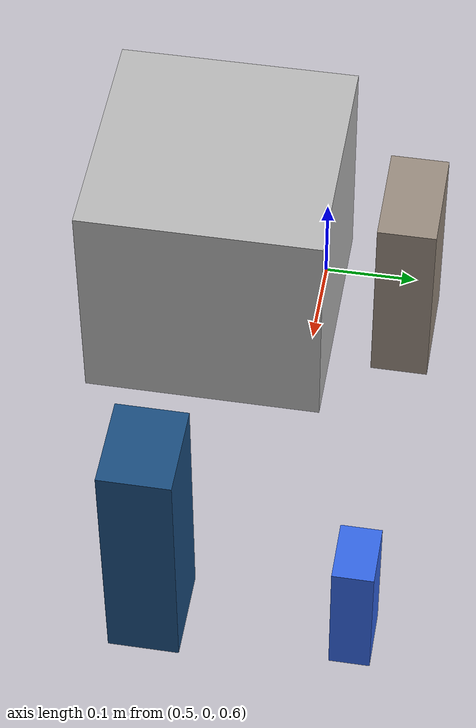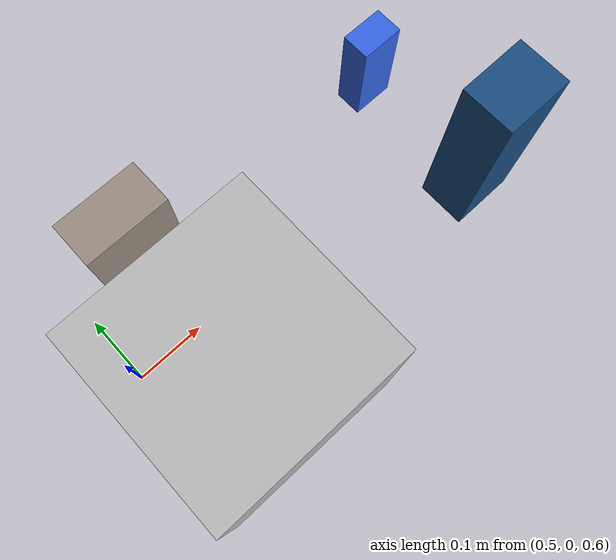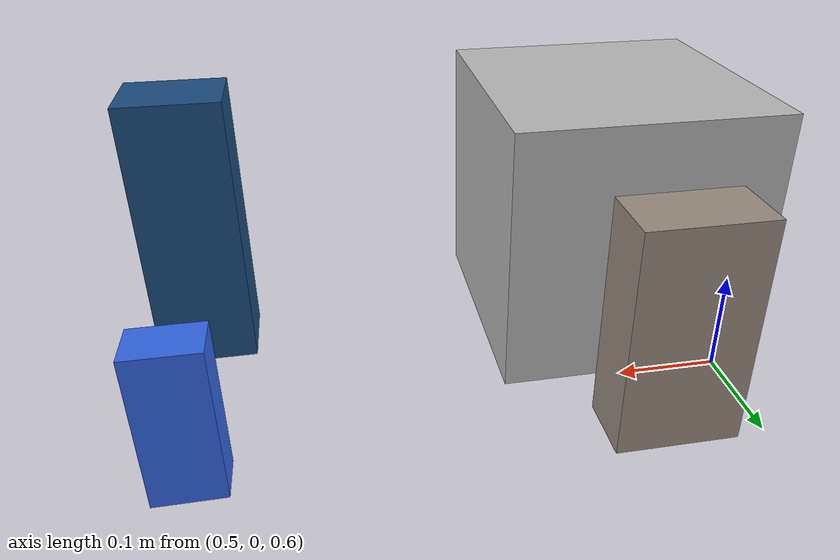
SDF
<sdf version="1.6">
 <world name="default">
  <include><uri>model://sun</uri></include>
  <plugin name="stepping_plugin" filename="libstepping_plugin.so"/>
  <plugin name="collision_map_plugin" filename="libcollision_map_plugin.so"/>
  <physics name="ode" type="ode">
   <ode><constraints><contact_max_correcting_vel>0</contact_max_correcting_vel></constraints></ode>
   <max_step_size>0.002</max_step_size>
   <real_time_update_rate>0</real_time_update_rate>
  </physics>
  <plugin name="gazebo_ros_tf_plugin" filename="libgazebo_ros_tf_plugin.so"/>
  <include><pose>0.6 -0.1 0.625 0 0 0</pose><uri>model://box1</uri></include>
  <include><pose>0.6 0.1 0.625 0 0 0</pose><uri>model://box2</uri></include>
  <include><pose>1.0 -0.1 0.625 0 0 0</pose><uri>model://box3</uri></include>
  <include><pose>1.0 0.1 0.625 0 0 0</pose><uri>model://box4</uri></include>
 </world>
</sdf>

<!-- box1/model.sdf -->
<sdf version="1.6">
    <model name="moving_box">
        <link name="link_1">
            <inertial>
                <pose>0 0 0.125 0 0 0</pose>
                <inertia>
                    <ixx>0.0208333</ixx>
                    <ixy>0</ixy>
                    <ixz>0</ixz>
                    <iyy>0.0208333</iyy>
                    <iyz>0</iyz>
                    <izz>0.0208333</izz>
                </inertia>
                <mass>2</mass>
            </inertial>
            <visual name="visual">
                <pose>0 0 0.125 0 0 0</pose>
                <geometry>
                    <box>
                        <size>0.25 0.25 0.25</size>
                    </box>
                </geometry>
            </visual>
            <collision name="box_collision">
                <pose>0 0 0.125 0 0 0</pose>
                <geometry>
                    <box>
                        <size>0.25 0.25 0.25</size>
                    </box>
                </geometry>
                <surface>
                    <friction>
                        <ode>
                            <mu>5.0</mu>
                            <mu2>5.0</mu2>
                        </ode>
                    </friction>
                </surface>
            </collision>
        </link>
        <plugin name='position_3d_plugin' filename='libposition_3d_plugin.so'>
            <kP_pos>5</kP_pos>
            <kI_pos>0.0</kI_pos>
            <kD_pos>0.0</kD_pos>
            <kP_vel>100.0</kP_vel>
            <kI_vel>0.0</kI_vel>
            <kD_vel>0.0</kD_vel>
            <max_force>15.0</max_force>
            <max_vel>0.5</max_vel>
            <kP_rot>0.1</kP_rot>
            <kI_rot>0.0</kI_rot>
            <kD_rot>0.0</kD_rot>
            <kP_rot_vel>0.0</kP_rot_vel>
            <kI_rot_vel>0.0</kI_rot_vel>
            <kD_rot_vel>0.0</kD_rot_vel>
            <max_torque>0.0</max_torque>
            <max_rot_vel>0.0</max_rot_vel>
            <link>link_1</link>
        </plugin>
    </model>
</sdf>

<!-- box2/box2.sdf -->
<sdf version="1.6">
    <model name="box2">
        <allow_auto_disable>true</allow_auto_disable>
        <link name="link_1">
            <pose>0 0 0.105 0 0 0 0</pose>
            <inertial>
                <pose>0 0 -0.04 0 0 0 0</pose>
                <inertia>
                    <ixx>0.03974999999999999</ixx>
                    <ixy>0</ixy>
                    <ixz>0</ixz>
                    <iyy>0.046833333333333324</iyy>
                    <iyz>0</iyz>
                    <izz>0.01308333333333333</izz>
                </inertia>
                <mass>10.0</mass>
            </inertial>
            <visual name="visual">
                <geometry>
                    <box>
                        <size>0.11 0.06 0.21</size>
                    </box>
                </geometry>
                <material>
                    <ambient>0.6 0.55 0.5 1.0</ambient>
                    <diffuse>0.6 0.55 0.5 1.0</diffuse>
                </material>
            </visual>
            <collision name="box_collision">
                <geometry>
                    <box>
                        <size>0.11 0.06 0.21</size>
                    </box>
                </geometry>
                <surface>
                    <friction>
                        <ode>
                            <mu>1.0</mu>
                            <mu2>1.0</mu2>
                        </ode>
                    </friction>
                    <contact>
                        <ode>
                            <kp>1e15</kp>
                            <kd>1e12</kd>
                        </ode>
                    </contact>
                </surface>
            </collision>
        </link>
    </model>
</sdf>

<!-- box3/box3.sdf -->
<sdf version="1.6">
    <model name="box3">
        <allow_auto_disable>true</allow_auto_disable>
        <link name="link_1">
            <kinematic>true</kinematic>
            <pose>0 0 0.13 0 0 0 0</pose>
            <inertial>
                <pose>0 0 -0.08 0 0 0 0</pose>
                <inertia>
                    <ixx>0.04441666666666666</ixx>
                    <ixy>0</ixy>
                    <ixz>0</ixz>
                    <iyy>0.047083333333333324</iyy>
                    <iyz>0</iyz>
                    <izz>0.010833333333333334</izz>
                </inertia>
                <mass>10.0</mass>
            </inertial>
            <visual name="visual">
                <geometry>
                    <box>
                        <size>0.09 0.07 0.26</size>
                    </box>
                </geometry>
                <material>
                    <ambient>0.1 0.3 0.5 1.0</ambient>
                    <diffuse>0.1 0.3 0.5 1.0</diffuse>
                </material>
            </visual>
            <collision name="box_collision">
                <geometry>
                    <box>
                        <size>0.09 0.07 0.26</size>
                    </box>
                </geometry>
                <surface>
                    <friction>
                        <ode>
                            <mu>1.0</mu>
                            <mu2>1.0</mu2>
                        </ode>
                    </friction>
                    <contact>
                        <ode>
                            <kp>1e15</kp>
                            <kd>1e12</kd>
                        </ode>
                    </contact>
                </surface>
            </collision>
        </link>
    </model>
</sdf>

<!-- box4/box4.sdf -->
<sdf version="1.6">
    <model name="box4">
        <allow_auto_disable>true</allow_auto_disable>
        <link name="link_1">
            <kinematic>true</kinematic>
            <pose>0 0 0.07 0 0 0 0</pose>
            <inertial>
                <pose>0 0 -0.08 0 0 0 0</pose>
                <inertia>
                    <ixx>0.017666666666666667</ixx>
                    <ixy>0</ixy>
                    <ixz>0</ixz>
                    <iyy>0.019333333333333334</iyy>
                    <iyz>0</iyz>
                    <izz>0.004333333333333333</izz>
                </inertia>
                <mass>10.0</mass>
            </inertial>
            <visual name="visual">
                <geometry>
                    <box>
                        <size>0.06 0.04 0.14</size>
                    </box>
                </geometry>
                    <material>
                    <ambient>0.2 0.4 0.9 1.0</ambient>
                    <diffuse>0.2 0.4 0.9 1.0</diffuse>
                    </material>
            </visual>
            <collision name="box_collision">
                <geometry>
                    <box>
                        <size>0.06 0.04 0.14</size>
                    </box>
                </geometry>
                <surface>
                    <friction>
                        <ode>
                            <mu>1.0</mu>
                            <mu2>1.0</mu2>
                        </ode>
                    </friction>
                    <contact>
                        <ode>
                            <kp>1e15</kp>
                            <kd>1e12</kd>
                        </ode>
                    </contact>
                </surface>
            </collision>
        </link>
    </model>
</sdf>
